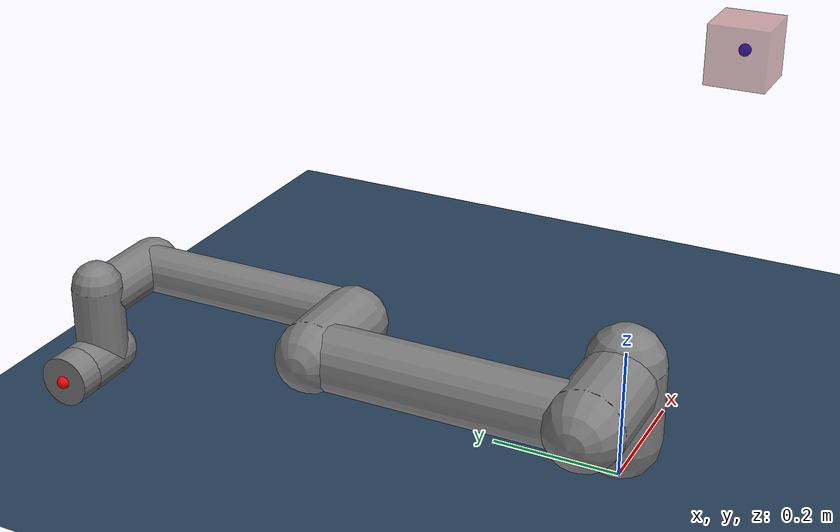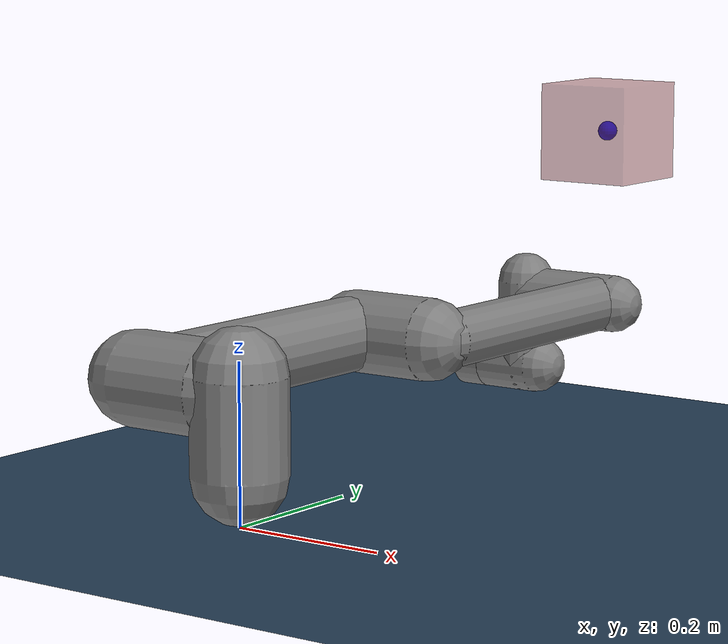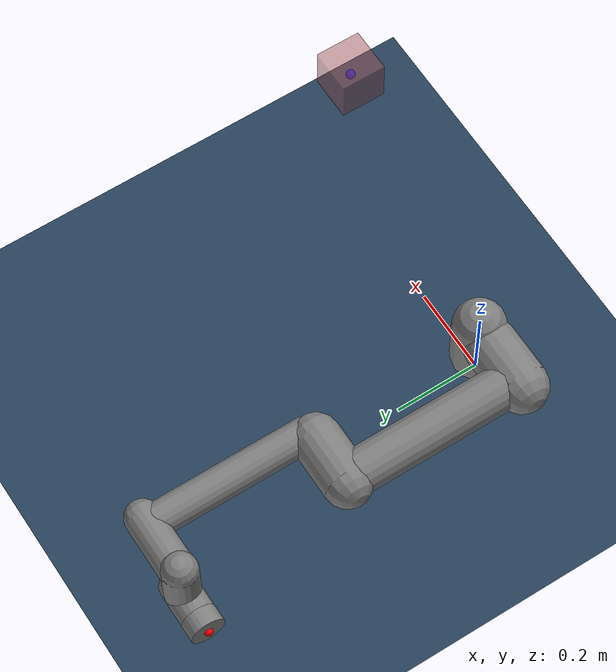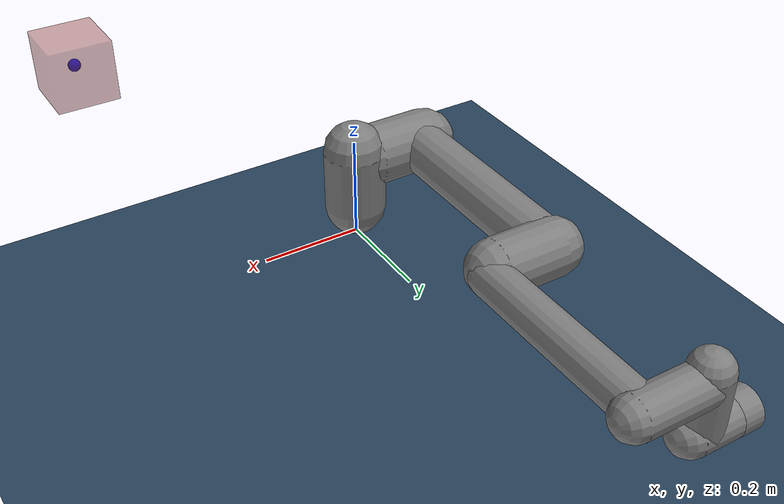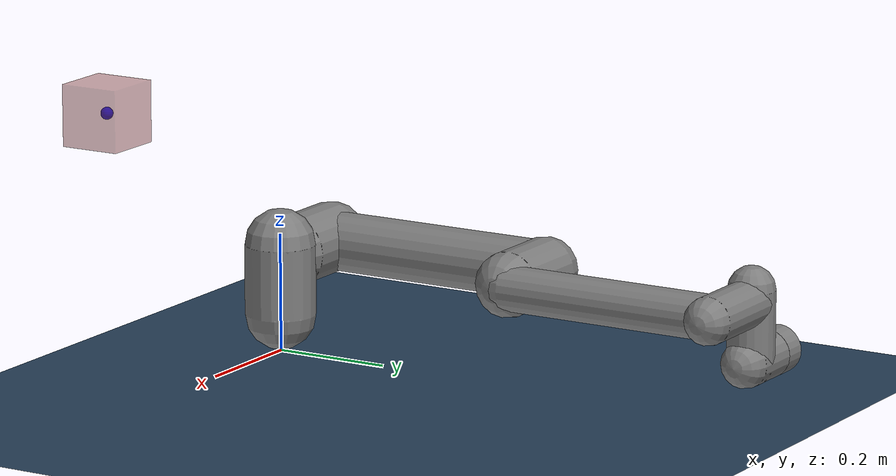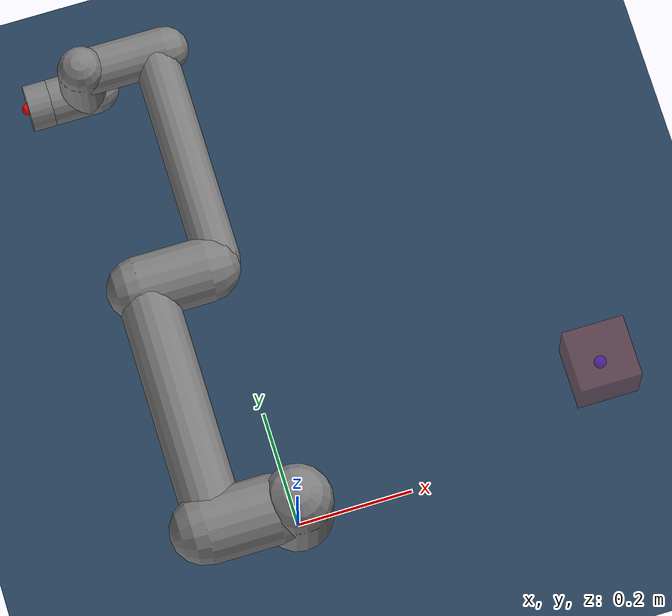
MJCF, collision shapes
<mujoco model="ur5e scene">
  <include file="ur5e.xml"/>

  <statistic center="0.3 0 0.3" extent="0.8"/>

  <visual>
    <headlight diffuse="0.6 0.6 0.6" ambient="0.1 0.1 0.1" specular="0 0 0"/>
    <rgba haze="0.15 0.25 0.35 1"/>
    <global azimuth="120" elevation="-20"/>
  </visual>

  <asset>
    <texture type="skybox" builtin="gradient" rgb1="0.3 0.5 0.7" rgb2="0 0 0" width="512" height="3072"/>
    <texture type="2d" name="groundplane" builtin="checker" mark="edge" rgb1="0.2 0.3 0.4" rgb2="0.1 0.2 0.3"
      markrgb="0.8 0.8 0.8" width="300" height="300"/>
    <material name="groundplane" texture="groundplane" texuniform="true" texrepeat="5 5" reflectance="0.2"/>
  </asset>

  <worldbody>
    <light pos="0 0 1.5" dir="0 0 -1" directional="true"/>
    <geom name="floor" size="1 1 0.05" type="plane" material="groundplane"/>
    <body name="target" pos="0.5 0 .5" quat="0 1 0 0" mocap="true">
      <geom type="box" size=".05 .05 .05" contype="0" conaffinity="0" rgba=".6 .3 .3 .5"/>
      <site type="sphere" size="0.01" rgba="0 0 1 1" group="1"/>
    </body>
  </worldbody>
</mujoco>

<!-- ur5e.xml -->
<mujoco model="ur5e">
  <compiler angle="radian" meshdir="assets" autolimits="true"/>

  <option integrator="implicitfast"/>

  <default>
    <default class="ur5e">
      <default class="visual">
        <geom type="mesh" contype="0" conaffinity="0" group="2"/>
      </default>
      <default class="collision">
        <geom type="capsule" group="3"/>
        <default class="eef_collision">
          <geom type="cylinder"/>
        </default>
      </default>
      <joint axis="0 1 0" range="-6.28319 6.28319"/>
      <default class="joint_limited">
        <joint range="-3.1415 3.1415"/>
      </default>
      <default class="position">
        <position ctrlrange="-6.2831 6.2831" kp="2000" kv="200" forcerange="-150 150"/>
        <default class="position_limited">
          <position ctrlrange="-3.1415 3.1415"/>
        </default>
        <default class="position_small">
          <position kp="500" kv="50" forcerange="-28 28"/>
        </default>
      </default>

    </default>
  </default>

  <asset>
    <material name="black" rgba="0.033 0.033 0.033 1"/>
    <material name="jointgray" rgba="0.278 0.278 0.278 1"/>
    <material name="linkgray" rgba="0.82 0.82 0.82 1"/>
    <material name="urblue" rgba="0.49 0.678 0.8 1"/>

    <mesh file="base_0.obj"/>
    <mesh file="base_1.obj"/>
    <mesh file="shoulder_0.obj"/>
    <mesh file="shoulder_1.obj"/>
    <mesh file="shoulder_2.obj"/>
    <mesh file="upperarm_0.obj"/>
    <mesh file="upperarm_1.obj"/>
    <mesh file="upperarm_2.obj"/>
    <mesh file="upperarm_3.obj"/>
    <mesh file="forearm_0.obj"/>
    <mesh file="forearm_1.obj"/>
    <mesh file="forearm_2.obj"/>
    <mesh file="forearm_3.obj"/>
    <mesh file="wrist1_0.obj"/>
    <mesh file="wrist1_1.obj"/>
    <mesh file="wrist1_2.obj"/>
    <mesh file="wrist2_0.obj"/>
    <mesh file="wrist2_1.obj"/>
    <mesh file="wrist2_2.obj"/>
    <mesh file="wrist3.obj"/>
  </asset>

  <worldbody>
    <body name="base" quat="1 0 0 1" childclass="ur5e">
      <inertial mass="4" pos="0 0 0" diaginertia="0.00443333156 0.00443333156 0.0072"/>
      <geom mesh="base_0" material="black" class="visual"/>
      <geom mesh="base_1" material="jointgray" class="visual"/>
      <body name="shoulder_link" pos="0 0 0.163">
        <inertial mass="3.7" pos="0 0 0" diaginertia="0.0102675 0.0102675 0.00666"/>
        <joint name="shoulder_pan_joint" axis="0 0 1"/>
        <geom mesh="shoulder_0" material="urblue" class="visual"/>
        <geom mesh="shoulder_1" material="black" class="visual"/>
        <geom mesh="shoulder_2" material="jointgray" class="visual"/>
        <geom class="collision" size="0.06 0.06" pos="0 0 -0.04"/>
        <body name="upper_arm_link" pos="0 0.138 0" quat="1 0 1 0">
          <inertial mass="8.393" pos="0 0 0.2125" diaginertia="0.133886 0.133886 0.0151074"/>
          <joint name="shoulder_lift_joint"/>
          <geom mesh="upperarm_0" material="linkgray" class="visual"/>
          <geom mesh="upperarm_1" material="black" class="visual"/>
          <geom mesh="upperarm_2" material="jointgray" class="visual"/>
          <geom mesh="upperarm_3" material="urblue" class="visual"/>
          <geom class="collision" pos="0 -0.04 0" quat="1 1 0 0" size="0.06 0.06"/>
          <geom class="collision" size="0.05 0.2" pos="0 0 0.2"/>
          <body name="forearm_link" pos="0 -0.131 0.425">
            <inertial mass="2.275" pos="0 0 0.196" diaginertia="0.0311796 0.0311796 0.004095"/>
            <joint name="elbow_joint" class="joint_limited"/>
            <geom mesh="forearm_0" material="urblue" class="visual"/>
            <geom mesh="forearm_1" material="linkgray" class="visual"/>
            <geom mesh="forearm_2" material="black" class="visual"/>
            <geom mesh="forearm_3" material="jointgray" class="visual"/>
            <geom class="collision" pos="0 0.08 0" quat="1 1 0 0" size="0.055 0.06"/>
            <geom class="collision" size="0.038 0.19" pos="0 0 0.2"/>
            <body name="wrist_1_link" pos="0 0 0.392" quat="1 0 1 0">
              <inertial mass="1.219" pos="0 0.127 0" diaginertia="0.0025599 0.0025599 0.0021942"/>
              <joint name="wrist_1_joint"/>
              <geom mesh="wrist1_0" material="black" class="visual"/>
              <geom mesh="wrist1_1" material="urblue" class="visual"/>
              <geom mesh="wrist1_2" material="jointgray" class="visual"/>
              <geom class="collision" pos="0 0.05 0" quat="1 1 0 0" size="0.04 0.07"/>
              <body name="wrist_2_link" pos="0 0.127 0">
                <inertial mass="1.219" pos="0 0 0.1" diaginertia="0.0025599 0.0025599 0.0021942"/>
                <joint name="wrist_2_joint" axis="0 0 1"/>
                <geom mesh="wrist2_0" material="black" class="visual"/>
                <geom mesh="wrist2_1" material="urblue" class="visual"/>
                <geom mesh="wrist2_2" material="jointgray" class="visual"/>
                <geom class="collision" size="0.04 0.06" pos="0 0 0.04"/>
                <geom class="collision" pos="0 0.02 0.1" quat="1 1 0 0" size="0.04 0.04"/>
                <body name="wrist_3_link" pos="0 0 0.1">
                  <inertial mass="0.1879" pos="0 0.0771683 0" quat="1 0 0 1"
                    diaginertia="0.000132134 9.90863e-05 9.90863e-05"/>
                  <joint name="wrist_3_joint"/>
                  <geom material="linkgray" mesh="wrist3" class="visual"/>
                  <geom class="eef_collision" pos="0 0.08 0" quat="1 1 0 0" size="0.04 0.02"/>
                  <body name="attachment" pos="0 0.1 0" quat="-1 1 1 1">
                    <site name="attachment_site" rgba="1 0 0 1" size="0.01" group="1"/>
                  </body>
                </body>
              </body>
            </body>
          </body>
        </body>
      </body>
    </body>
  </worldbody>

  <actuator>
    <position class="position" name="shoulder_pan_position" joint="shoulder_pan_joint"/>
    <position class="position" name="shoulder_lift_position" joint="shoulder_lift_joint"/>
    <position class="position_limited" name="elbow_position" joint="elbow_joint"/>
    <position class="position_small" name="wrist_1_position" joint="wrist_1_joint"/>
    <position class="position_small" name="wrist_2_position" joint="wrist_2_joint"/>
    <position class="position_small" name="wrist_3_position" joint="wrist_3_joint"/>
  </actuator>

  <keyframe>
    <key name="home" qpos="-1.5708 -1.5708 1.5708 -1.5708 -1.5708 0" ctrl="-1.5708 -1.5708 1.5708 -1.5708 -1.5708 0"/>
  </keyframe>
</mujoco>
